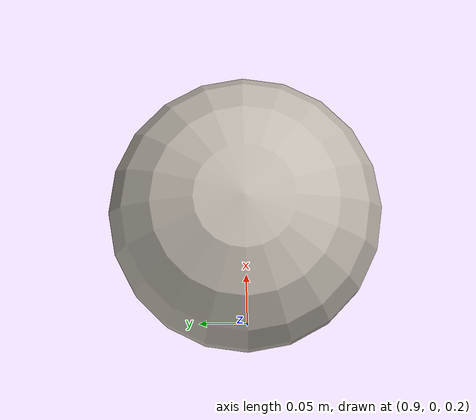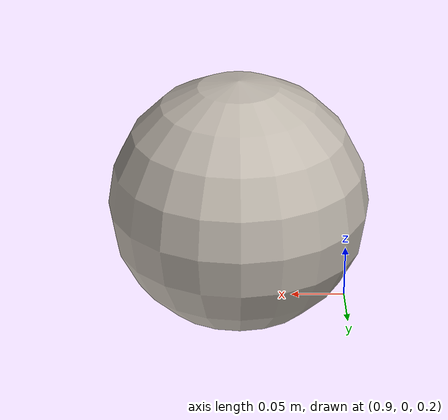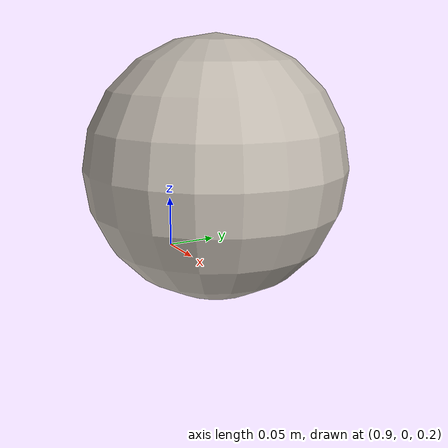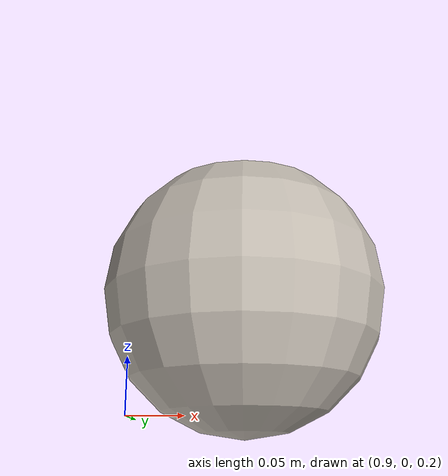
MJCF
<mujoco model="basketball_cvx_dcmp">
  <asset>
    <texture name="basketball_texture" type="2d" file="/home/loki/drcl_projects/assets/source/textures/basketball.png"/>
    <material name="basketball_material" texture="basketball_texture" specular="0.25" shininess="0.6" reflectance="0.1"/>
  </asset>
  <worldbody>
    <body name="basketball" pos="1.0 0.0 0.3" quat="1 0 0 0">
      <freejoint/>
      <geom type="sphere" size="0.12" mass="0.62369" friction="0.6 0.6 0.0001" material="basketball_material"/>
    </body>
  </worldbody>
</mujoco>
